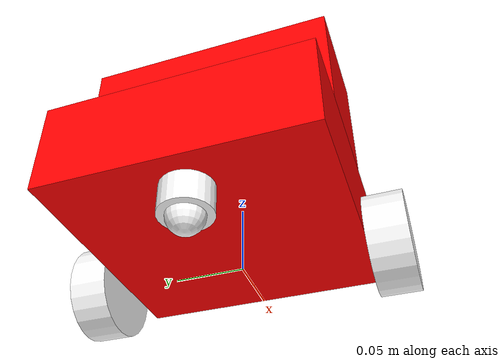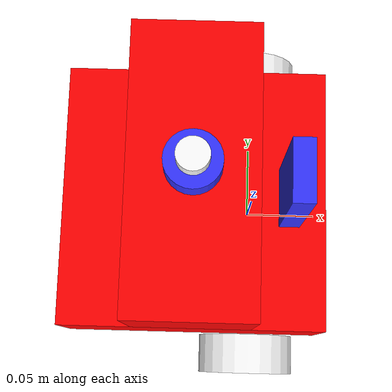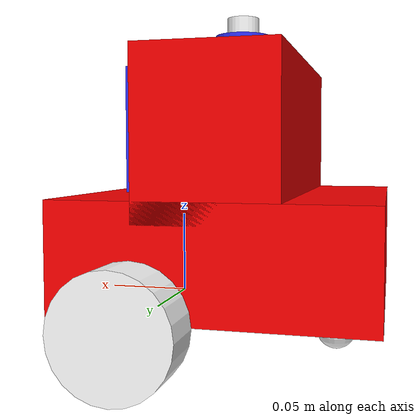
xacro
<?xml version="1.0"?>
<robot xmlns:xacro="http://www.ros.org/wiki/xacro" name="bumperbot">

    <xacro:include filename="inertial_macros.xacro"/>

    <material name="white">
        <color rgba="1 1 1 1"/>
    </material>

    <material name="orange">
        <color rgba="1 0.3 0.1 1"/>
    </material>

    <material name="blue">
        <color rgba="0.2 0.2 1 1"/>
    </material>

    <material name="black">
        <color rgba="0 0 0 1"/>
    </material>

    <material name="red">
        <color rgba="1 0 0 1"/>
    </material>

    <!-- BASE LINK -->
    <link name="base_link"></link>

    <!-- BASE FOOTPRINT JOINT -->
    <joint name="base_footprint_joint" type="fixed">
        <parent link="base_footprint"/>
        <child link="base_link"/>
        <origin xyz="0 0 0" rpy="0 0 0"/>
    </joint>

     <!-- BASE FOOTPRINT LINK -->
     <link name="base_footprint"></link>

    <!-- CHASSIS JOINT -->
    <joint name="chassis_joint" type="fixed">
        <parent link="base_link"/>
        <child link="chassis_link"/>
        <origin xyz="-0.04 0 0"/> <!-- 18/2 = 9 and -5 = 4cm because of dc motor distance and convert to cm to m = 0.04 -->
    </joint>

    <!-- CHASSIS LINK -->
    <link name="chassis_link">
    <visual>
        <origin xyz="0.0 0.0 0.0325" rpy="0.0 0.0 0.0"/>
        <geometry>
            <box size="0.18 0.18 0.065"/>
        </geometry>
        <material name="red"/>
    </visual>

    <collision>
        <origin xyz="0.0 0.0 0.0325" rpy="0.0 0.0 0.0"/>
        <geometry>
            <box size="0.18 0.18 0.065"/>
        </geometry>
    </collision>
    <xacro:inertial_box mass="0.5" x="0.18" y="0.18" z="0.065">
        <origin xyz="0.0 0.0 0.0325" rpy="0.0 0.0 0.0"/>
    </xacro:inertial_box>
    </link>

    <gazebo reference="chassis_link">
        <material>Gazebo/Red</material>
    </gazebo>

    <!-- LEFT WHEEL JOINT -->
    <joint name="wheel_left_joint" type="continuous">
        <origin xyz="0.0 0.105 0.0" rpy="-${pi/2} 0.0 0.0"/>
        <parent link="base_link"/>
        <child link="left_wheel_link"/>
        <axis xyz="0.0 0.0 1.0"/>
    </joint>

    <!-- LEFT WHEEL LINK -->
    <link name="left_wheel_link">
        <visual>
            <geometry>
                <cylinder radius="0.03405" length="0.027"/>
            </geometry>
            <material name="white"/>
        </visual>

        <collision>
            <geometry>
                <cylinder radius="0.03405" length="0.027"/>
            </geometry>
        </collision>
        <xacro:inertial_cylinder mass="0.05" length="0.027" radius="0.03405">
            <origin xyz="0.0 0.0 0.0" rpy="0.0 0.0 0.0"/>
        </xacro:inertial_cylinder>
    </link>

    <gazebo reference="left_wheel_link">
        <material>Gazebo/White</material>
    </gazebo>

    <!-- RIGHT WHEEL JOINT -->
    <joint name="wheel_right_joint" type="continuous">
        <origin xyz="0.0 -0.105 0.0" rpy="${pi/2} 0.0 0.0"/>
        <parent link="base_link"/>
        <child link="right_wheel_link"/>
        <axis xyz="0.0 0.0 -1.0"/>
    </joint>

    <!-- RIGHT WHEEL LINK -->
    <link name="right_wheel_link">
    <visual>
        <geometry>
            <cylinder radius="0.03405" length="0.027"/>
        </geometry>
        <material name="white"/>
    </visual>

    <collision>
        <geometry>
            <cylinder radius="0.03405" length="0.027"/>
        </geometry>
    </collision>
    <xacro:inertial_cylinder mass="0.05" length="0.027" radius="0.03405">
        <origin xyz="0.0 0.0 0.0" rpy="0.0 0.0 0.0"/>
    </xacro:inertial_cylinder>
    </link>

    <gazebo reference="right_wheel_link">
        <material>Gazebo/White</material>
    </gazebo>

    <!-- CAMERA JOINT -->
    <joint name="camera_joint" type="fixed">
        <origin xyz="0.065 0.0 0.105" rpy="0.0 0.0 0.0"/>
        <parent link="chassis_link"/>
        <child link="camera_link"/>
    </joint>

    <!-- CAMERA LINK -->
    <link name="camera_link">
        <visual>
            <origin xyz="0.0 0.0 0.0" rpy="0.0 0.0 0.0"/>
            <geometry>
                <box size="0.014 0.04 0.08"/>
            </geometry>
            <material name="blue"/>
        </visual>

        <collision>
            <geometry>
                <box size="0.014 0.04 0.08"/>
            </geometry>
        </collision>
        <xacro:inertial_box mass="0.01" x="0.014" y="0.04" z="0.08">
            <origin xyz="0.0 0.0 0.0" rpy="0.0 0.0 0.0"/>
        </xacro:inertial_box>
    </link>

    <gazebo reference="camera_link">
        <material>Gazebo/Black</material>
    </gazebo>

    <joint name="camera_optical_joint" type="fixed">
        <parent link="camera_link"/>
        <child link="camera_link_optical"/>
        <origin xyz="0 0 0" rpy="${-pi/2} 0 ${-pi/2}"/>
    </joint>

    <link name="camera_link_optical"></link>

    <!-- LIDAR CASE JOINT -->
    <joint name="lidar_joint" type="fixed">
        <parent link="chassis_link"/>
        <child link="ldlidar_base"/>
        <origin xyz="0.0 0.0 0.1" rpy="0.0 0.0 0.0"/>
    </joint>

    <!-- LIDAR CASE LINK -->
    <link name="ldlidar_base">
    <visual>
        <geometry>
            <box size="0.08 0.18 0.095"/>
        </geometry>
        <material name="red"/>
    </visual>

    <collision>
        <geometry>
            <box size="0.08 0.18 0.095"/>
        </geometry>
    </collision>
    <xacro:inertial_box mass="0.03" x="0.08" y="0.18" z="0.095">
        <origin xyz="0.0 0.0 0.0" rpy="0.0 0.0 0.0"/>
    </xacro:inertial_box>
    </link>

    <gazebo reference="ldlidar_base">
        <material>Gazebo/Red</material>
    </gazebo>

    <!-- LIDAR  JOINT -->
    <joint name="lidar_case_joint" type="fixed">
        <origin xyz="0.0 0.0 0.055 " rpy="0.0 0.0 0.0"/>
        <parent link="ldlidar_base"/>
        <child link="ldlidar_link"/>
    </joint>

    <!-- LIDAR LINK -->
    <link name="ldlidar_link">
    <visual>
        <geometry>
            <cylinder radius="0.0175" length="0.0175"/>
        </geometry>
        <material name="blue"/>
    </visual>

    <collision>
        <geometry>
            <cylinder radius="0.0175" length="0.0175"/>
        </geometry>
    </collision>
    <xacro:inertial_cylinder mass="0.1" length="0.0175" radius="0.0175">
        <origin xyz="0.0 0.0 0.0" rpy="0.0 0.0 0.0"/>
    </xacro:inertial_cylinder>
    </link>

    <gazebo reference="ldlidar_link">
        <material>Gazebo/Blue</material>
    </gazebo>

    <!-- IMU JOINT -->
    <joint name="imu_joint" type="fixed">
        <origin xyz="0.0 0.0 0.015 " rpy="0.0 0.0 0.0"/>
        <parent link="ldlidar_link"/>
        <child link="imu_link"/>
    </joint>

    <!-- IMU LINK -->
    <link name="imu_link">
    <visual>
        <geometry>
            <cylinder radius="0.01" length="0.01"/>
        </geometry>
        <material name="white"/>
    </visual>

    <collision>
        <geometry>
            <cylinder radius="0.01" length="0.01"/>
        </geometry>
    </collision>
    <xacro:inertial_cylinder mass="0.1" length="0.01" radius="0.01">
        <origin xyz="0.0 0.0 0.0" rpy="0.0 0.0 0.0"/>
    </xacro:inertial_cylinder>
    </link>

    <gazebo reference="imu_link">
        <material>Gazebo/White</material>
    </gazebo>

    <!-- CASTER HOLDER JOINT -->
    <joint name="caster_holder_joint" type="fixed">
        <origin xyz="-0.06 0.0 0.0" rpy="0.0 0.0 0.0"/>
        <parent link="chassis_link"/>
        <child link="caster_holder_link"/>
    </joint>

    <!-- CASTER HOLDER LINK -->
    <link name="caster_holder_link">
        <visual>
            <origin xyz="0.0 0.0 0.0" rpy="0.0 0.0 0.0"/>
            <geometry>
                <cylinder radius="0.0175" length="0.040"/>
            </geometry>
            <material name="white"/>
        </visual>

        <collision>
            <geometry>
                <cylinder radius="0.0175" length="0.040"/>
            </geometry>
        </collision>

        <xacro:inertial_cylinder mass="0.01" length="0.040" radius="0.0175">
        <origin xyz="0.0 0.0 0.0" rpy="0.0 0.0 0.0"/>
        </xacro:inertial_cylinder>
    </link>

    <gazebo reference="caster_holder_link">
        <material>Gazebo/White</material>
    </gazebo>

    <!-- CASTER BALL JOINT -->
    <joint name="caster_ball_joint" type="fixed">
        <origin xyz="0.0 0.0 -0.020" rpy="0.0 0.0 0.0"/>
        <parent link="caster_holder_link"/>
        <child link="caster_link"/>
    </joint>

    <!-- CASTER BALL LINK -->
    <link name="caster_link">
    <visual>
        <origin xyz="0.0 0.0 0.0" rpy="0.0 0.0 0.0"/>
        <geometry>
            <sphere radius="0.0125"/>
        </geometry>
        <material name="white"/>
    </visual>

    <collision>
        <geometry>
            <sphere radius="0.0125"/>
        </geometry>
    </collision>
    <xacro:inertial_sphere mass="0.01" radius="0.0125">
        <origin xyz="0.0 0.0 0.0" rpy="0.0 0.0 0.0"/>
    </xacro:inertial_sphere>
    </link>

    <gazebo reference="caster_link">
        <material>Gazebo/White</material>
        <mu1 value="0.001"/>
        <mu2 value="0.001"/>
    </gazebo>

    <!-- GAZEBO Lidar Plugin -->
    <gazebo reference="ldlidar_link">
        <sensor name="laser" type="ray">
            <pose> 0 0 0 0 0 0 </pose>
            <visualize>true</visualize>
            <update_rate>10</update_rate>
            <ray>
                <scan>
                    <horizontal>
                    <samples>360</samples>

                    <min_angle>-3.14</min_angle>
                    <max_angle>3.14</max_angle>

                    <!-- 3.14 is 180 degree -->
                  </horizontal>
                </scan>
                <range>
                    <min>0.3</min>
                    <max>12</max>
                </range>
            </ray>
            <plugin name="laser_controller" filename="libgazebo_ros_ray_sensor.so">
            <ros>
                <remapping>~/out:=scan</remapping>
            </ros>
            <output_type>sensor_msgs/LaserScan</output_type>
            <frame_name>ldlidar_link</frame_name>
            </plugin>
        </sensor>
    </gazebo>

    <!-- CAMERA  Plugin -->
    <gazebo reference="camera_link">
        <sensor type="camera" name="camera">
        <pose>0 0 0 0 0 0</pose>
        <visualize>true</visualize>
        <update_rate>10.0</update_rate>
        <camera name="head">
            <horizontal_fov>1.089</horizontal_fov>
            <image>
                <width>640</width>
                <height>480</height>
                <format>R8G8B8</format>
            </image>
            <clip>
                <near>0.05</near>
                <far>8.0</far>
            </clip>
        </camera>

        <plugin name="camera_controller" filename="libgazebo_ros_camera.so">
            <frame_name>camera_link_optical</frame_name>
        </plugin>
        </sensor>
    </gazebo>

    <!-- IMU -->
    <!--Refer to this link https://docs.ros.org/en/rolling/p/gazebo_plugins/generated/classgazebo__plugins_1_1GazeboRosImuSensor.html#class-documentation -->
    <gazebo reference="imu_link">
        <sensor name="imu_sensor" type="imu">
            <plugin filename="libgazebo_ros_imu_sensor.so" name="imu_plugin">
               <ros>
                 <namespace>/imu</namespace>
                 <remapping>~/out:=out</remapping>
               </ros>
               <initial_orientation_as_reference>false</initial_orientation_as_reference>
             </plugin>
             <always_on>true</always_on>
             <update_rate>100</update_rate>
             <visualize>true</visualize>
             <imu>
               <angular_velocity>
                 <x>
                   <noise type="gaussian">
                     <mean>0.0</mean>
                     <stddev>2e-4</stddev>
                     <bias_mean>0.0000075</bias_mean>
                     <bias_stddev>0.0000008</bias_stddev>
                   </noise>
                 </x>
                 <y>
                   <noise type="gaussian">
                     <mean>0.0</mean>
                     <stddev>2e-4</stddev>
                     <bias_mean>0.0000075</bias_mean>
                     <bias_stddev>0.0000008</bias_stddev>
                   </noise>
                 </y>
                 <z>
                   <noise type="gaussian">
                     <mean>0.0</mean>
                     <stddev>2e-4</stddev>
                     <bias_mean>0.0000075</bias_mean>
                     <bias_stddev>0.0000008</bias_stddev>
                   </noise>
                 </z>
               </angular_velocity>
               <linear_acceleration>
                 <x>
                   <noise type="gaussian">
                     <mean>0.0</mean>
                     <stddev>1.7e-2</stddev>
                     <bias_mean>0.1</bias_mean>
                     <bias_stddev>0.001</bias_stddev>
                   </noise>
                 </x>
                 <y>
                   <noise type="gaussian">
                     <mean>0.0</mean>
                     <stddev>1.7e-2</stddev>
                     <bias_mean>0.1</bias_mean>
                     <bias_stddev>0.001</bias_stddev>
                   </noise>
                 </y>
                 <z>
                   <noise type="gaussian">
                     <mean>0.0</mean>
                     <stddev>1.7e-2</stddev>
                     <bias_mean>0.1</bias_mean>
                     <bias_stddev>0.001</bias_stddev>
                   </noise>
                 </z>
               </linear_acceleration>
             </imu>
           </sensor>

        <!--1st Imu Option-->

        <!--2nd Imu Option-->
      </gazebo>
</robot>
